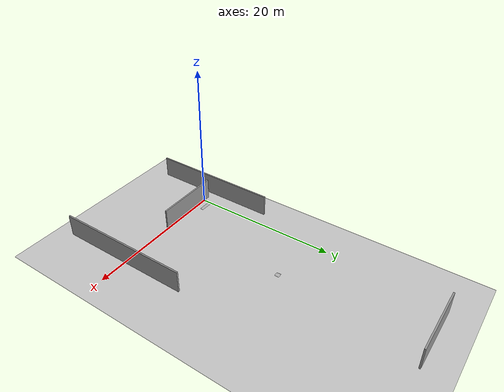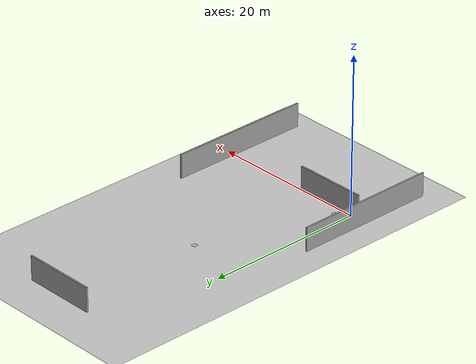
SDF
<sdf version="1.6">
 <world name="default">
  <light name="sun" type="directional">
   <pose>0 0 10 0 -0 0</pose>
   <diffuse>0.8 0.8 0.8 1</diffuse>
   <specular>0.2 0.2 0.2 1</specular>
   <attenuation>
    <range>1000</range>
    <constant>0.9</constant>
    <linear>0.01</linear>
    <quadratic>0.001</quadratic>
   </attenuation>
   <direction>-0.5 0.1 -0.9</direction>
  </light>
  <model name="ground_plane">
   <static>1</static>
   <link name="link">
    <collision name="collision">
     <geometry><plane><normal>0 0 1</normal><size>100 100</size></plane></geometry>
     <surface><friction><ode><mu>100</mu><mu2>50</mu2></ode></friction></surface>
    </collision>
    <visual name="visual">
     <cast_shadows>0</cast_shadows>
     <geometry><plane><normal>0 0 1</normal><size>100 100</size></plane></geometry>
     <material>
      <script><uri>file://media/materials/scripts/gazebo.material</uri><name>Gazebo/Grey</name></script>
     </material>
    </visual>
   </link>
  </model>
  <gravity>0 0 -9.8</gravity>
  <magnetic_field>6e-06 2.3e-05 -4.2e-05</magnetic_field>
  <atmosphere type="adiabatic"/>
  <physics name="default_physics" default="0" type="ode">
   <max_step_size>0.001</max_step_size>
   <real_time_factor>1</real_time_factor>
   <real_time_update_rate>1000</real_time_update_rate>
  </physics>
  <scene><ambient>0.4 0.4 0.4 1</ambient><background>0.7 0.7 0.7 1</background><shadows>1</shadows></scene>
  <audio><device>default</device></audio>
  <spherical_coordinates>
   <surface_model>EARTH_WGS84</surface_model>
   <latitude_deg>0</latitude_deg>
   <longitude_deg>0</longitude_deg>
   <elevation>0</elevation>
   <heading_deg>0</heading_deg>
  </spherical_coordinates>
  <model name="end_plane">
   <static>1</static>
   <link name="link">
    <collision name="collision">
     <geometry><plane><normal>0 0 1</normal><size>0.6 0.6</size></plane></geometry>
     <surface><friction><ode><mu>100</mu><mu2>50</mu2></ode></friction></surface>
    </collision>
    <visual name="visual">
     <cast_shadows>0</cast_shadows>
     <geometry><plane><normal>0 0 1</normal><size>0.6 0.6</size></plane></geometry>
     <material>
      <script>
       <uri>model://end_plane/materials/scripts</uri>
       <uri>model://end_plane/materials/textures/</uri>
       <name>EndPlane/Image</name>
      </script>
     </material>
    </visual>
   </link>
   <pose>7 17 0 0 -0 0</pose>
  </model>
  <model name="start_plane">
   <static>1</static>
   <link name="link">
    <collision name="collision">
     <geometry><plane><normal>0 0 1</normal><size>0.5 1.8</size></plane></geometry>
     <surface><friction><ode><mu>100</mu><mu2>50</mu2></ode></friction></surface>
    </collision>
    <visual name="visual">
     <cast_shadows>0</cast_shadows>
     <geometry><plane><normal>0 0 1</normal><size>0.5 1.8</size></plane></geometry>
     <material>
      <script>
       <uri>model://start_plane/materials/scripts</uri>
       <uri>model://start_plane/materials/textures/</uri>
       <name>StartPlane/Image</name>
      </script>
     </material>
    </visual>
   </link>
   <pose>1 1 0 0 0 -1.58541</pose>
  </model>
  <model name="grey_wall">
   <static>1</static>
   <link name="link">
    <pose>3.5 -0.1 1.5 0 -0 0</pose>
    <collision name="collision"><geometry><box><size>9 0.2 3</size></box></geometry></collision>
    <visual name="visual">
     <cast_shadows>0</cast_shadows>
     <geometry><box><size>9 0.2 3</size></box></geometry>
     <material>
      <script>
       <uri>model://grey_wall/materials/scripts</uri>
       <uri>model://grey_wall/materials/textures</uri>
       <name>vrc/grey_wall</name>
      </script>
     </material>
    </visual>
   </link>
  </model>
  <model name="grey_wall_clone">
   <static>1</static>
   <link name="link">
    <pose>9 -1.1 1.5 0 -0 0</pose>
    <collision name="collision"><geometry><box><size>18 0.2 3</size></box></geometry></collision>
    <visual name="visual">
     <cast_shadows>0</cast_shadows>
     <geometry><box><size>18 0.2 3</size></box></geometry>
     <material>
      <script>
       <uri>model://grey_wall/materials/scripts</uri>
       <uri>model://grey_wall/materials/textures</uri>
       <name>vrc/grey_wall</name>
      </script>
     </material>
    </visual>
   </link>
   <pose>-1.1 9 0 0 0 -1.5708</pose>
  </model>
  <model name="grey_wall_clone_0">
   <static>1</static>
   <link name="link">
    <pose>3.5 18.1 1.5 0 -0 0</pose>
    <collision name="collision"><geometry><box><size>9 0.2 3</size></box></geometry></collision>
    <visual name="visual">
     <cast_shadows>0</cast_shadows>
     <geometry><box><size>9 0.2 3</size></box></geometry>
     <material>
      <script>
       <uri>model://grey_wall/materials/scripts</uri>
       <uri>model://grey_wall/materials/textures</uri>
       <name>vrc/grey_wall</name>
      </script>
     </material>
    </visual>
   </link>
   <pose>3.5 18.1 1.5 0 -0 0</pose>
  </model>
  <model name="grey_wall_clone_clone">
   <static>1</static>
   <link name="link">
    <pose>8.1 9 1.5 0 -0 0</pose>
    <collision name="collision"><geometry><box><size>18 0.2 3</size></box></geometry></collision>
    <visual name="visual">
     <cast_shadows>0</cast_shadows>
     <geometry><box><size>18 0.2 3</size></box></geometry>
     <material>
      <script>
       <uri>model://grey_wall/materials/scripts</uri>
       <uri>model://grey_wall/materials/textures</uri>
       <name>vrc/grey_wall</name>
      </script>
     </material>
    </visual>
   </link>
   <pose>8.1 9 1.5 0 0 -1.5708</pose>
  </model>
 </world>
</sdf>
